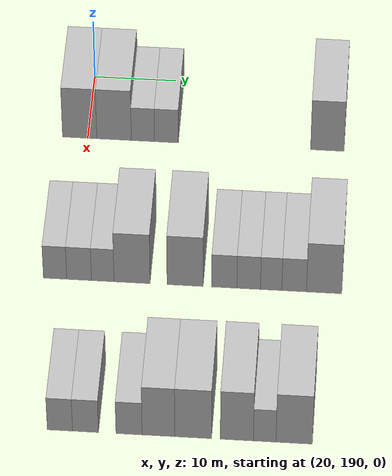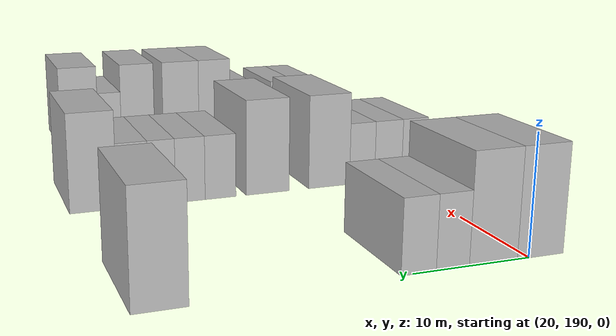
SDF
<sdf version="1.6">
 <world name="default">
  <model name="building_108">
   <static>1</static>
   <pose>25.0000 188.9693 0 0.000000 0.000000 0.000000</pose>
   <link name="link">
    <pose>0 0 4.50 0 0 0</pose>
    <collision name="collision"><geometry><box><size>10.0000 4.1582 9.0000</size></box></geometry></collision>
    <visual name="visual">
     <cast_shadows>0</cast_shadows>
     <geometry><box><size>10.0000 4.1582 9.0000</size></box></geometry>
     <material>
      <script>
       <uri>model://HANNAS_wall/materials/scripts</uri>
       <uri>model://HANNAS_wall/materials/textures</uri>
       <name>vrc/HANNAS_wall</name>
      </script>
     </material>
    </visual>
   </link>
  </model>
  <model name="building_109">
   <static>1</static>
   <pose>25.0000 193.1550 0 0.000000 0.000000 0.000000</pose>
   <link name="link">
    <pose>0 0 4.50 0 0 0</pose>
    <collision name="collision"><geometry><box><size>10.0000 4.2131 9.0000</size></box></geometry></collision>
    <visual name="visual">
     <cast_shadows>0</cast_shadows>
     <geometry><box><size>10.0000 4.2131 9.0000</size></box></geometry>
     <material>
      <script>
       <uri>model://HANNAS_wall/materials/scripts</uri>
       <uri>model://HANNAS_wall/materials/textures</uri>
       <name>vrc/HANNAS_wall</name>
      </script>
     </material>
    </visual>
   </link>
  </model>
  <model name="building_110">
   <static>1</static>
   <pose>25.0000 196.6678 0 0.000000 0.000000 0.000000</pose>
   <link name="link">
    <pose>0 0 3.00 0 0 0</pose>
    <collision name="collision"><geometry><box><size>10.0000 2.8126 6.0000</size></box></geometry></collision>
    <visual name="visual">
     <cast_shadows>0</cast_shadows>
     <geometry><box><size>10.0000 2.8126 6.0000</size></box></geometry>
     <material>
      <script>
       <uri>model://HANNAS_wall/materials/scripts</uri>
       <uri>model://HANNAS_wall/materials/textures</uri>
       <name>vrc/HANNAS_wall</name>
      </script>
     </material>
    </visual>
   </link>
  </model>
  <model name="building_111">
   <static>1</static>
   <pose>25.0000 199.5339 0 0.000000 0.000000 0.000000</pose>
   <link name="link">
    <pose>0 0 3.00 0 0 0</pose>
    <collision name="collision"><geometry><box><size>10.0000 2.9195 6.0000</size></box></geometry></collision>
    <visual name="visual">
     <cast_shadows>0</cast_shadows>
     <geometry><box><size>10.0000 2.9195 6.0000</size></box></geometry>
     <material>
      <script>
       <uri>model://HANNAS_wall/materials/scripts</uri>
       <uri>model://HANNAS_wall/materials/textures</uri>
       <name>vrc/HANNAS_wall</name>
      </script>
     </material>
    </visual>
   </link>
  </model>
  <model name="building_112">
   <static>1</static>
   <pose>25.0000 219.0847 0 0.000000 0.000000 0.000000</pose>
   <link name="link">
    <pose>0 0 4.50 0 0 0</pose>
    <collision name="collision"><geometry><box><size>10.0000 4.0607 9.0000</size></box></geometry></collision>
    <visual name="visual">
     <cast_shadows>0</cast_shadows>
     <geometry><box><size>10.0000 4.0607 9.0000</size></box></geometry>
     <material>
      <script>
       <uri>model://HANNAS_wall/materials/scripts</uri>
       <uri>model://HANNAS_wall/materials/textures</uri>
       <name>vrc/HANNAS_wall</name>
      </script>
     </material>
    </visual>
   </link>
  </model>
  <model name="building_222">
   <static>1</static>
   <pose>47.0000 187.9914 0 0.000000 0.000000 0.000000</pose>
   <link name="link">
    <pose>0 0 3.00 0 0 0</pose>
    <collision name="collision"><geometry><box><size>10.0000 2.7412 6.0000</size></box></geometry></collision>
    <visual name="visual">
     <cast_shadows>0</cast_shadows>
     <geometry><box><size>10.0000 2.7412 6.0000</size></box></geometry>
     <material>
      <script>
       <uri>model://HANNAS_wall/materials/scripts</uri>
       <uri>model://HANNAS_wall/materials/textures</uri>
       <name>vrc/HANNAS_wall</name>
      </script>
     </material>
    </visual>
   </link>
  </model>
  <model name="building_223">
   <static>1</static>
   <pose>47.0000 190.8247 0 0.000000 0.000000 0.000000</pose>
   <link name="link">
    <pose>0 0 3.00 0 0 0</pose>
    <collision name="collision"><geometry><box><size>10.0000 2.9255 6.0000</size></box></geometry></collision>
    <visual name="visual">
     <cast_shadows>0</cast_shadows>
     <geometry><box><size>10.0000 2.9255 6.0000</size></box></geometry>
     <material>
      <script>
       <uri>model://HANNAS_wall/materials/scripts</uri>
       <uri>model://HANNAS_wall/materials/textures</uri>
       <name>vrc/HANNAS_wall</name>
      </script>
     </material>
    </visual>
   </link>
  </model>
  <model name="building_224">
   <static>1</static>
   <pose>47.0000 193.6203 0 0.000000 0.000000 0.000000</pose>
   <link name="link">
    <pose>0 0 3.00 0 0 0</pose>
    <collision name="collision"><geometry><box><size>10.0000 2.6657 6.0000</size></box></geometry></collision>
    <visual name="visual">
     <cast_shadows>0</cast_shadows>
     <geometry><box><size>10.0000 2.6657 6.0000</size></box></geometry>
     <material>
      <script>
       <uri>model://HANNAS_wall/materials/scripts</uri>
       <uri>model://HANNAS_wall/materials/textures</uri>
       <name>vrc/HANNAS_wall</name>
      </script>
     </material>
    </visual>
   </link>
  </model>
  <model name="building_225">
   <static>1</static>
   <pose>47.0000 197.0817 0 0.000000 0.000000 0.000000</pose>
   <link name="link">
    <pose>0 0 4.50 0 0 0</pose>
    <collision name="collision"><geometry><box><size>10.0000 4.2570 9.0000</size></box></geometry></collision>
    <visual name="visual">
     <cast_shadows>0</cast_shadows>
     <geometry><box><size>10.0000 4.2570 9.0000</size></box></geometry>
     <material>
      <script>
       <uri>model://HANNAS_wall/materials/scripts</uri>
       <uri>model://HANNAS_wall/materials/textures</uri>
       <name>vrc/HANNAS_wall</name>
      </script>
     </material>
    </visual>
   </link>
  </model>
  <model name="building_226">
   <static>1</static>
   <pose>47.0000 203.3414 0 0.000000 0.000000 0.000000</pose>
   <link name="link">
    <pose>0 0 4.50 0 0 0</pose>
    <collision name="collision"><geometry><box><size>10.0000 4.2624 9.0000</size></box></geometry></collision>
    <visual name="visual">
     <cast_shadows>0</cast_shadows>
     <geometry><box><size>10.0000 4.2624 9.0000</size></box></geometry>
     <material>
      <script>
       <uri>model://HANNAS_wall/materials/scripts</uri>
       <uri>model://HANNAS_wall/materials/textures</uri>
       <name>vrc/HANNAS_wall</name>
      </script>
     </material>
    </visual>
   </link>
  </model>
  <model name="building_227">
   <static>1</static>
   <pose>47.0000 207.9575 0 0.000000 0.000000 0.000000</pose>
   <link name="link">
    <pose>0 0 3.00 0 0 0</pose>
    <collision name="collision"><geometry><box><size>10.0000 2.9699 6.0000</size></box></geometry></collision>
    <visual name="visual">
     <cast_shadows>0</cast_shadows>
     <geometry><box><size>10.0000 2.9699 6.0000</size></box></geometry>
     <material>
      <script>
       <uri>model://HANNAS_wall/materials/scripts</uri>
       <uri>model://HANNAS_wall/materials/textures</uri>
       <name>vrc/HANNAS_wall</name>
      </script>
     </material>
    </visual>
   </link>
  </model>
  <model name="building_228">
   <static>1</static>
   <pose>47.0000 210.8364 0 0.000000 0.000000 0.000000</pose>
   <link name="link">
    <pose>0 0 3.00 0 0 0</pose>
    <collision name="collision"><geometry><box><size>10.0000 2.7879 6.0000</size></box></geometry></collision>
    <visual name="visual">
     <cast_shadows>0</cast_shadows>
     <geometry><box><size>10.0000 2.7879 6.0000</size></box></geometry>
     <material>
      <script>
       <uri>model://HANNAS_wall/materials/scripts</uri>
       <uri>model://HANNAS_wall/materials/textures</uri>
       <name>vrc/HANNAS_wall</name>
      </script>
     </material>
    </visual>
   </link>
  </model>
  <model name="building_229">
   <static>1</static>
   <pose>47.0000 213.4782 0 0.000000 0.000000 0.000000</pose>
   <link name="link">
    <pose>0 0 3.00 0 0 0</pose>
    <collision name="collision"><geometry><box><size>10.0000 2.4957 6.0000</size></box></geometry></collision>
    <visual name="visual">
     <cast_shadows>0</cast_shadows>
     <geometry><box><size>10.0000 2.4957 6.0000</size></box></geometry>
     <material>
      <script>
       <uri>model://HANNAS_wall/materials/scripts</uri>
       <uri>model://HANNAS_wall/materials/textures</uri>
       <name>vrc/HANNAS_wall</name>
      </script>
     </material>
    </visual>
   </link>
  </model>
  <model name="building_230">
   <static>1</static>
   <pose>47.0000 216.1709 0 0.000000 0.000000 0.000000</pose>
   <link name="link">
    <pose>0 0 3.00 0 0 0</pose>
    <collision name="collision"><geometry><box><size>10.0000 2.8896 6.0000</size></box></geometry></collision>
    <visual name="visual">
     <cast_shadows>0</cast_shadows>
     <geometry><box><size>10.0000 2.8896 6.0000</size></box></geometry>
     <material>
      <script>
       <uri>model://HANNAS_wall/materials/scripts</uri>
       <uri>model://HANNAS_wall/materials/textures</uri>
       <name>vrc/HANNAS_wall</name>
      </script>
     </material>
    </visual>
   </link>
  </model>
  <model name="building_231">
   <static>1</static>
   <pose>47.0000 219.6950 0 0.000000 0.000000 0.000000</pose>
   <link name="link">
    <pose>0 0 4.50 0 0 0</pose>
    <collision name="collision"><geometry><box><size>10.0000 4.1586 9.0000</size></box></geometry></collision>
    <visual name="visual">
     <cast_shadows>0</cast_shadows>
     <geometry><box><size>10.0000 4.1586 9.0000</size></box></geometry>
     <material>
      <script>
       <uri>model://HANNAS_wall/materials/scripts</uri>
       <uri>model://HANNAS_wall/materials/textures</uri>
       <name>vrc/HANNAS_wall</name>
      </script>
     </material>
    </visual>
   </link>
  </model>
  <model name="building_346">
   <static>1</static>
   <pose>69.0000 190.5682 0 0.000000 0.000000 0.000000</pose>
   <link name="link">
    <pose>0 0 3.00 0 0 0</pose>
    <collision name="collision"><geometry><box><size>10.0000 2.8756 6.0000</size></box></geometry></collision>
    <visual name="visual">
     <cast_shadows>0</cast_shadows>
     <geometry><box><size>10.0000 2.8756 6.0000</size></box></geometry>
     <material>
      <script>
       <uri>model://HANNAS_wall/materials/scripts</uri>
       <uri>model://HANNAS_wall/materials/textures</uri>
       <name>vrc/HANNAS_wall</name>
      </script>
     </material>
    </visual>
   </link>
  </model>
  <model name="building_347">
   <static>1</static>
   <pose>69.0000 193.4921 0 0.000000 0.000000 0.000000</pose>
   <link name="link">
    <pose>0 0 3.00 0 0 0</pose>
    <collision name="collision"><geometry><box><size>10.0000 2.9724 6.0000</size></box></geometry></collision>
    <visual name="visual">
     <cast_shadows>0</cast_shadows>
     <geometry><box><size>10.0000 2.9724 6.0000</size></box></geometry>
     <material>
      <script>
       <uri>model://HANNAS_wall/materials/scripts</uri>
       <uri>model://HANNAS_wall/materials/textures</uri>
       <name>vrc/HANNAS_wall</name>
      </script>
     </material>
    </visual>
   </link>
  </model>
  <model name="building_348">
   <static>1</static>
   <pose>69.0000 198.4697 0 0.000000 0.000000 0.000000</pose>
   <link name="link">
    <pose>0 0 3.00 0 0 0</pose>
    <collision name="collision"><geometry><box><size>10.0000 2.9828 6.0000</size></box></geometry></collision>
    <visual name="visual">
     <cast_shadows>0</cast_shadows>
     <geometry><box><size>10.0000 2.9828 6.0000</size></box></geometry>
     <material>
      <script>
       <uri>model://HANNAS_wall/materials/scripts</uri>
       <uri>model://HANNAS_wall/materials/textures</uri>
       <name>vrc/HANNAS_wall</name>
      </script>
     </material>
    </visual>
   </link>
  </model>
  <model name="building_349">
   <static>1</static>
   <pose>69.0000 201.8259 0 0.000000 0.000000 0.000000</pose>
   <link name="link">
    <pose>0 0 4.50 0 0 0</pose>
    <collision name="collision"><geometry><box><size>10.0000 3.7295 9.0000</size></box></geometry></collision>
    <visual name="visual">
     <cast_shadows>0</cast_shadows>
     <geometry><box><size>10.0000 3.7295 9.0000</size></box></geometry>
     <material>
      <script>
       <uri>model://HANNAS_wall/materials/scripts</uri>
       <uri>model://HANNAS_wall/materials/textures</uri>
       <name>vrc/HANNAS_wall</name>
      </script>
     </material>
    </visual>
   </link>
  </model>
  <model name="building_350">
   <static>1</static>
   <pose>69.0000 205.7859 0 0.000000 0.000000 0.000000</pose>
   <link name="link">
    <pose>0 0 4.50 0 0 0</pose>
    <collision name="collision"><geometry><box><size>10.0000 4.1906 9.0000</size></box></geometry></collision>
    <visual name="visual">
     <cast_shadows>0</cast_shadows>
     <geometry><box><size>10.0000 4.1906 9.0000</size></box></geometry>
     <material>
      <script>
       <uri>model://HANNAS_wall/materials/scripts</uri>
       <uri>model://HANNAS_wall/materials/textures</uri>
       <name>vrc/HANNAS_wall</name>
      </script>
     </material>
    </visual>
   </link>
  </model>
  <model name="building_351">
   <static>1</static>
   <pose>69.0000 210.7682 0 0.000000 0.000000 0.000000</pose>
   <link name="link">
    <pose>0 0 4.50 0 0 0</pose>
    <collision name="collision"><geometry><box><size>10.0000 3.7739 9.0000</size></box></geometry></collision>
    <visual name="visual">
     <cast_shadows>0</cast_shadows>
     <geometry><box><size>10.0000 3.7739 9.0000</size></box></geometry>
     <material>
      <script>
       <uri>model://HANNAS_wall/materials/scripts</uri>
       <uri>model://HANNAS_wall/materials/textures</uri>
       <name>vrc/HANNAS_wall</name>
      </script>
     </material>
    </visual>
   </link>
  </model>
  <model name="building_352">
   <static>1</static>
   <pose>69.0000 213.9413 0 0.000000 0.000000 0.000000</pose>
   <link name="link">
    <pose>0 0 3.00 0 0 0</pose>
    <collision name="collision"><geometry><box><size>10.0000 2.5723 6.0000</size></box></geometry></collision>
    <visual name="visual">
     <cast_shadows>0</cast_shadows>
     <geometry><box><size>10.0000 2.5723 6.0000</size></box></geometry>
     <material>
      <script>
       <uri>model://HANNAS_wall/materials/scripts</uri>
       <uri>model://HANNAS_wall/materials/textures</uri>
       <name>vrc/HANNAS_wall</name>
      </script>
     </material>
    </visual>
   </link>
  </model>
  <model name="building_353">
   <static>1</static>
   <pose>69.0000 217.2948 0 0.000000 0.000000 0.000000</pose>
   <link name="link">
    <pose>0 0 4.50 0 0 0</pose>
    <collision name="collision"><geometry><box><size>10.0000 4.1348 9.0000</size></box></geometry></collision>
    <visual name="visual">
     <cast_shadows>0</cast_shadows>
     <geometry><box><size>10.0000 4.1348 9.0000</size></box></geometry>
     <material>
      <script>
       <uri>model://HANNAS_wall/materials/scripts</uri>
       <uri>model://HANNAS_wall/materials/textures</uri>
       <name>vrc/HANNAS_wall</name>
      </script>
     </material>
    </visual>
   </link>
  </model>
 </world>
</sdf>
